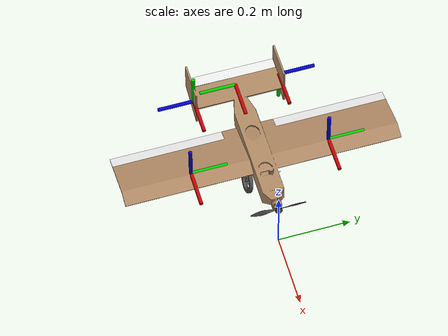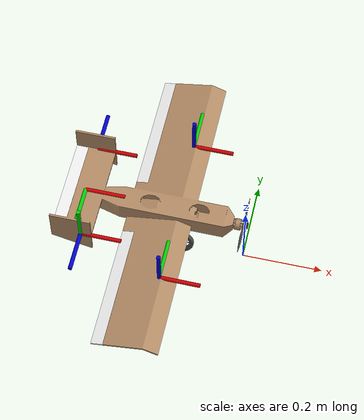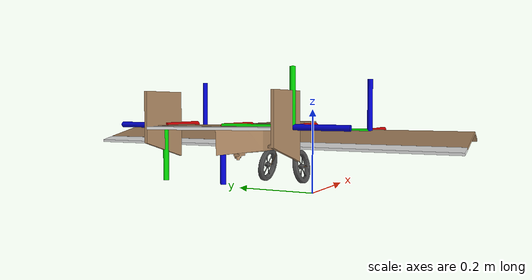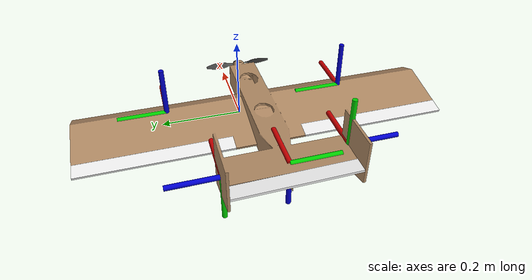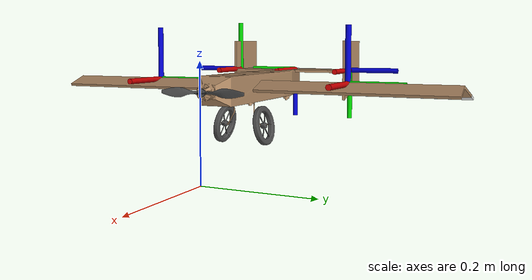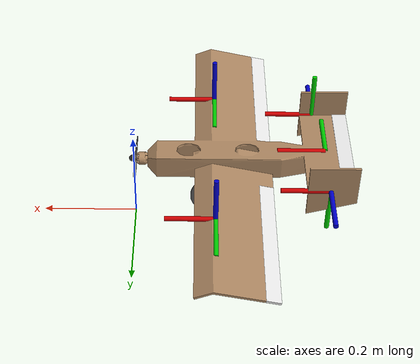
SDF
<?xml version='1.0'?>
<sdf version='1.6'>
  <model name="mini_fixedwing_03">
    <pose>0 0 0.15 0 0 0</pose>
    <link name='fuselage'>
      <inertial>
        <pose>-0.183 0 0 0 0 0</pose>
        <mass>0.245</mass>
        <inertia>
          <ixx>1.00e-3</ixx>
          <iyy>1.28e-3</iyy>
          <izz>1.20e-2</izz>
        </inertia>
      </inertial>
      <collision name='collision'>
        <geometry>
          <mesh>
            <uri>model://mini_fixedwing_03/meshes/stl/fuselage.stl</uri>
          </mesh>
        </geometry>
        <surface>
          <friction>
            <ode>
              <mu>0.2</mu>
              <mu2>0.2</mu2>
            </ode>
          </friction>
          <contact>
            <ode>
              <max_vel>0.1</max_vel>
              <min_depth>0.001</min_depth>
            </ode>
          </contact>
        </surface>
      </collision>
      <visual name='visual'>
        <geometry>
          <mesh>
            <uri>model://mini_fixedwing_03/meshes/stl/fuselage.stl</uri>
          </mesh>
        </geometry>
        <material>
          <ambient>0.678 0.529 0.384 1</ambient>
          <diffuse>0.678 0.529 0.384 1</diffuse>
          <specular>0.678 0.529 0.384 1</specular>
        </material>
      </visual>
      <visual name='cp_vtail_left'>
        <pose>-0.4 0.122 0.024 -1.57 0 0</pose>
        <geometry>
          <mesh>
            <scale>0.1 0.1 0.1</scale>
            <uri>model://mini_fixedwing_11/meshes/axes.dae</uri> </mesh>
        </geometry>
      </visual>
      <visual name='cp_vtail_right'>
        <pose>-0.38 -0.122 0.024 1.57 0 0</pose>
        <geometry>
          <mesh>
            <scale>0.1 0.1 0.1</scale>
            <uri>model://mini_fixedwing_11/meshes/axes.dae</uri>
          </mesh>
        </geometry>
      </visual>
      <visual name='cp_htail'>
        <pose>-0.4 0 0.024 3.14 0 0</pose>
        <geometry>
          <mesh>
            <scale>0.1 0.1 0.1</scale>
            <uri>model://mini_fixedwing_11/meshes/axes.dae</uri> </mesh>
        </geometry>
      </visual>
      <visual name='cp_wing_left'>
        <pose>-0.17 0.19 0.01 0 0 0</pose>
        <geometry>
          <mesh>
            <scale>0.1 0.1 0.1</scale>
            <uri>model://mini_fixedwing_11/meshes/axes.dae</uri> </mesh>
        </geometry>
      </visual>
      <visual name='cp_wing_right'>
        <pose>-0.17 -0.19 0.01 0 0 0</pose>
        <geometry>
          <mesh>
            <scale>0.1 0.1 0.1</scale>
            <uri>model://mini_fixedwing_11/meshes/axes.dae</uri> </mesh>
        </geometry>
      </visual>
    </link>

    <link name='wheel_left'>
      <inertial>
        <pose>-0.155 0.04 -0.068 0.17 0 0</pose>
        <mass>0.004</mass>
        <inertia>
          <ixx>1.49e-4</ixx>
          <iyy>6.63e-4</iyy>
          <izz>5.84e-4</izz>
        </inertia>
      </inertial>
      <visual name='visual'>
        <cast_shadows>0</cast_shadows>
        <geometry>
          <mesh>
            <uri>model://mini_fixedwing_03/meshes/stl/wheel_left.stl</uri>
          </mesh>
        </geometry>
        <material>
          <script>
            <name>Gazebo/DarkGrey</name>
          </script>
        </material>
      </visual>
      <collision name='collision'>
        <pose>-0.155 0.04 -0.068 1.74 0 0</pose>
        <geometry>
          <cylinder>
            <radius>0.035</radius>
            <length>0.01</length>
          </cylinder>
        </geometry>
        <surface>
          <friction>
            <ode>
              <mu>0.3</mu>
              <mu2>0.3</mu2>
            </ode>
          </friction>
          <contact>
            <ode>
              <max_vel>0.1</max_vel>
              <min_depth>0.001</min_depth>
            </ode>
          </contact>
        </surface>
      </collision>

    </link>

    <joint name='wheel_left_joint' type='revolute'>
      <pose>-0.155 0.04 -0.068 0.17 0 0</pose>
      <parent>fuselage</parent>
      <child>wheel_left</child>
      <axis>
        <xyz>0 1 0</xyz>
        <dynamics>
          <damping>0.1</damping>
        </dynamics>
      </axis>
      <physics>
        <ode>
          <implicit_spring_damper>1</implicit_spring_damper>
        </ode>
      </physics>
    </joint>

    <link name='wheel_right'>
      <inertial>
        <pose>-0.155 -0.04 -0.068 -0.17 0 0</pose>
        <mass>0.004</mass>
        <inertia>
          <ixx>1.49e-4</ixx>
          <iyy>6.63e-4</iyy>
          <izz>5.84e-4</izz>
        </inertia>
      </inertial>
      <visual name='visual'>
        <cast_shadows>0</cast_shadows>
        <geometry>
          <mesh>
            <uri>model://mini_fixedwing_03/meshes/stl/wheel_right.stl</uri>
          </mesh>
        </geometry>
        <material>
          <script>
            <name>Gazebo/DarkGrey</name>
          </script>
        </material>
      </visual>
      <collision name='collision'>
        <pose>-0.155 -0.04 -0.068 1.4 0 0</pose>
        <geometry>
          <cylinder>
            <radius>0.035</radius>
            <length>0.01</length>
          </cylinder>
        </geometry>
        <surface>
          <friction>
            <ode>
              <mu>0.3</mu>
              <mu2>0.3</mu2>
            </ode>
          </friction>
          <contact>
            <ode>
              <max_vel>0.1</max_vel>
              <min_depth>0.001</min_depth>
            </ode>
          </contact>
        </surface>
      </collision>
    </link>

    <joint name='wheel_right_joint' type='revolute'>
      <pose>-0.155 -0.04 -0.068 -0.17 0 0</pose>
      <parent>fuselage</parent>
      <child>wheel_right</child>
      <axis>
        <xyz>0 1 0</xyz>
        <dynamics>
          <damping>0.1</damping>
        </dynamics>
      </axis>
      <physics>
        <ode>
          <implicit_spring_damper>1</implicit_spring_damper>
        </ode>
      </physics>
    </joint>

    <!--The rear wheel doesn't stay in contact with the ground long.-->

    <link name='elevator'>
      <inertial>
        <pose>-0.44 0 0.023 0 0 0</pose>
        <mass>0.002</mass>
        <inertia>
          <ixx>8e-6</ixx>
          <iyy>2.94e-4</iyy>
          <izz>3e-4</izz>
        </inertia>
      </inertial>
      <visual name='visual'>
        <cast_shadows>0</cast_shadows>
        <geometry>
          <mesh>
            <uri>model://mini_fixedwing_03/meshes/stl/elevator.stl</uri>
          </mesh>
        </geometry>
        <material>
          <script>
            <name>Gazebo/White</name>
          </script>
        </material>
      </visual>
    </link>

    <joint name='elevator_joint' type='revolute'>
      <pose>-0.425 0 0.023 0 0 0</pose>
      <parent>fuselage</parent>
      <child>elevator</child>
      <axis>
        <xyz>0 1 0</xyz>
        <dynamics>
          <damping>0.1</damping>
        </dynamics>
        <limit>
          <lower>-0.5</lower>
          <upper>0.5</upper>
        </limit>
      </axis>
      <physics>
        <ode>
          <implicit_spring_damper>1</implicit_spring_damper>
        </ode>
      </physics>
    </joint>

    <link name='aileron_left'>
      <inertial>
        <pose>-0.276 0.2265 -0.012</pose>
        <mass>0.002</mass>
        <inertia>
          <ixx>1.16e-4</ixx>
          <iyy>1.48e-4</iyy>
          <izz>2.63e-4</izz>
        </inertia>
      </inertial>
      <visual name='visual'>
        <cast_shadows>0</cast_shadows>
        <geometry>
          <mesh>
            <uri>model://mini_fixedwing_03/meshes/stl/aileron_left.stl</uri>
          </mesh>
        </geometry>
        <material>
          <script>
            <name>Gazebo/White</name>
          </script>
        </material>
      </visual>
    </link>

    <joint name='aileron_left_joint' type='revolute'>
      <pose>-0.26 0.2265 -0.01</pose>
      <parent>fuselage</parent>
      <child>aileron_left</child>
      <axis>
        <xyz>0 -1 0</xyz>
        <dynamics>
          <damping>0.1</damping>
        </dynamics>
        <limit>
          <lower>-0.5</lower>
          <upper>0.5</upper>
        </limit>
      </axis>
      <physics>
        <ode>
          <implicit_spring_damper>1</implicit_spring_damper>
        </ode>
      </physics>
    </joint>

    <link name='aileron_right'>
      <inertial>
        <pose>-0.276 -0.2265 -0.012</pose>
        <mass>0.002</mass>
        <inertia>
          <ixx>1.16e-4</ixx>
          <iyy>1.48e-4</iyy>
          <izz>2.63e-4</izz>
        </inertia>
      </inertial>
      <visual name='visual'>
        <cast_shadows>0</cast_shadows>
        <geometry>
          <mesh>
            <uri>model://mini_fixedwing_03/meshes/stl/aileron_right.stl</uri>
          </mesh>
        </geometry>
        <material>
          <script>
            <name>Gazebo/White</name>
          </script>
        </material>
      </visual>
    </link>

    <joint name='aileron_right_joint' type='revolute'>
      <pose>-0.26 -0.2265 -0.01</pose>
      <parent>fuselage</parent>
      <child>aileron_right</child>
      <axis>
        <xyz>0 -1 0</xyz>
        <dynamics>
          <damping>0.1</damping>
        </dynamics>
        <limit>
          <lower>-0.5</lower>
          <upper>0.5</upper>
        </limit>
      </axis>
      <physics>
        <ode>
          <implicit_spring_damper>1</implicit_spring_damper>
        </ode>
      </physics>
    </joint>

    <link name='propeller'>
      <inertial>
        <mass>0.005</mass>
        <inertia>
          <ixx>1e-6</ixx>
          <iyy>1e-6</iyy>
          <izz>1e-6</izz>
        </inertia>
      </inertial>
      <visual name='visual'>
        <cast_shadows>0</cast_shadows>
        <geometry>
          <mesh>
            <uri>model://mini_fixedwing_03/meshes/stl/propeller.stl</uri>
          </mesh>
        </geometry>
        <material>
          <script>
            <name>Gazebo/DarkGrey</name>
          </script>
        </material>
      </visual>
    </link>

    <joint name='propeller_joint' type='revolute'>
      <parent>fuselage</parent>
      <child>propeller</child>
      <axis>
        <xyz>1 0 0</xyz>
      </axis>
    </joint>

    <include>
      <uri>model://gps</uri>
      <pose>0 0 0 0 0 0</pose>
      <name>gps</name>
    </include>
    <joint name='gps_joint' type='fixed'>
      <child>gps::link</child>
      <parent>fuselage</parent>
    </joint>

    <plugin name="vtail_left" filename="libLiftDragPlugin2.so">
      <pose>-0.4 0.122 0.024 -1.57 0 0</pose>
      <cL0>0</cL0>
      <cLa>4.75</cLa>
      <cm0>0</cm0>
      <cma>0</cma>
      <cD0>0.03</cD0>
      <kcDcL>0.1</kcDcL>
      <alpha_stall>0.34</alpha_stall>
      <cLa_stall>-3.85</cLa_stall>
      <cma_stall>0</cma_stall>
      <area>0.017</area>
      <air_density>1.2041</air_density>
      <link_name>fuselage</link_name>
    </plugin>

    <plugin name="vtail_right" filename="libLiftDragPlugin2.so">
      <pose>-0.4 -0.122 0.024 1.57 0 0</pose>
      <cL0>0</cL0>
      <cLa>4.75</cLa>
      <cm0>0</cm0>
      <cma>0</cma>
      <cD0>0.03</cD0>
      <kcDcL>0.1</kcDcL>
      <alpha_stall>0.34</alpha_stall>
      <cLa_stall>-3.85</cLa_stall>
      <cma_stall>0</cma_stall>
      <area>0.017</area>
      <air_density>1.2041</air_density>
      <link_name>fuselage</link_name>
    </plugin>

    <plugin name="htail" filename="libLiftDragPlugin2.so">
      <pose>-0.4 0 0.024 3.14 0 0</pose>
      <cL0>0</cL0>
      <cLa>4.75</cLa>
      <cm0>0</cm0>
      <cma>0</cma>
      <cD0>0.03</cD0>
      <kcDcL>0.017</kcDcL>
      <alpha_stall>0.34</alpha_stall>
      <cLa_stall>-3.85</cLa_stall>
      <cma_stall>0</cma_stall>
      <area>0.03</area>
      <air_density>1.2041</air_density>
      <link_name>fuselage</link_name>
      <control_joint_name>elevator_joint</control_joint_name>
      <control_joint_rad_to_cL>1.0</control_joint_rad_to_cL>
      <control_joint_rad_to_cm>-0.25</control_joint_rad_to_cm>
      <verbose>0</verbose>
    </plugin>

    <plugin name="wing_left" filename="libLiftDragPlugin2.so">
      <pose>-0.17 0.19 0.01 0 0 0</pose>
      <cL0>0.285</cL0>
      <cLa>4.75</cLa>
      <!--Check cm0, maybe need a larger htail-->
      <cm0>0.04</cm0>
      <cma>0</cma>
      <cD0>0.03</cD0>
      <kcDcL>0.1</kcDcL>
      <alpha_stall>0.34</alpha_stall>
      <cLa_stall>-3.85</cLa_stall>
      <cma_stall>0</cma_stall>
      <area>0.1</area>
      <air_density>1.2041</air_density>
      <link_name>fuselage</link_name>
      <control_joint_name>aileron_left_joint</control_joint_name>
      <control_joint_rad_to_cL>1.0</control_joint_rad_to_cL>
      <control_joint_rad_to_cm>-0.25</control_joint_rad_to_cm>
    </plugin>

    <plugin name="wing_right" filename="libLiftDragPlugin2.so">
      <pose>-0.17 -0.19 0.01 0 0 0</pose>
      <cL0>0.285</cL0>
      <cLa>4.75</cLa>
      <!--Check cm0, maybe need a larger htail-->
      <cm0>0.04</cm0>
      <cma>0</cma>
      <cD0>0.03</cD0>
      <kcDcL>0.1</kcDcL>
      <alpha_stall>0.34</alpha_stall>
      <cLa_stall>-3.85</cLa_stall>
      <cma_stall>0</cma_stall>
      <area>0.1</area>
      <air_density>1.2041</air_density>
      <link_name>fuselage</link_name>
      <control_joint_name>aileron_right_joint</control_joint_name>
      <control_joint_rad_to_cL>1.0</control_joint_rad_to_cL>
      <control_joint_rad_to_cm>-0.25</control_joint_rad_to_cm>
    </plugin>

    <!--Start PX4 autopilot-->

    <link name='imu_link'>
      <pose>-0.183 0 0 0 0 0</pose>
      <inertial>
        <mass>0.001</mass>
        <inertia>
          <ixx>1e-05</ixx>
          <iyy>1e-05</iyy>
          <izz>1e-05</izz>
        </inertia>
      </inertial>
    </link>

    <joint name='imu_joint' type='revolute'>
      <child>imu_link</child>
      <parent>fuselage</parent>
      <axis>
        <xyz>1 0 0</xyz>
        <limit>
          <lower>0</lower>
          <upper>0</upper>
          <effort>0</effort>
          <velocity>0</velocity>
        </limit>
        <dynamics>
          <spring_reference>0</spring_reference>
          <spring_stiffness>0</spring_stiffness>
        </dynamics>
        <use_parent_model_frame>1</use_parent_model_frame>
      </axis>
    </joint>

    <link name='airspeed_link'>
      <pose>0 0 0 0 0 0</pose>
      <inertial>
        <pose>0 0 0 0 0 0</pose>
        <mass>0.015</mass>
        <inertia>
          <ixx>1e-05</ixx>
          <ixy>0</ixy>
          <ixz>0</ixz>
          <iyy>1e-05</iyy>
          <iyz>0</iyz>
          <izz>1e-05</izz>
        </inertia>
      </inertial>
    </link>
    <joint name='airspeed_joint' type='revolute'>
      <child>airspeed_link</child>
      <parent>fuselage</parent>
      <axis>
        <xyz>1 0 0</xyz>
        <limit>
          <lower>0</lower>
          <upper>0</upper>
          <effort>0</effort>
          <velocity>0</velocity>
        </limit>
        <dynamics>
          <spring_reference>0</spring_reference>
          <spring_stiffness>0</spring_stiffness>
        </dynamics>
        <use_parent_model_frame>1</use_parent_model_frame>
      </axis>
    </joint>

    <plugin name='gazebo_imu_plugin' filename='libgazebo_imu_plugin.so'>
      <robotNamespace></robotNamespace>
      <linkName>imu_link</linkName>
      <imuTopic>/imu</imuTopic>
      <gyroscopeNoiseDensity>0.0003394</gyroscopeNoiseDensity>
      <gyroscopeRandomWalk>3.8785e-05</gyroscopeRandomWalk>
      <gyroscopeBiasCorrelationTime>1000.0</gyroscopeBiasCorrelationTime>
      <gyroscopeTurnOnBiasSigma>0.0087</gyroscopeTurnOnBiasSigma>
      <accelerometerNoiseDensity>0.004</accelerometerNoiseDensity>
      <accelerometerRandomWalk>0.006</accelerometerRandomWalk>
      <accelerometerBiasCorrelationTime>300.0</accelerometerBiasCorrelationTime>
      <accelerometerTurnOnBiasSigma>0.196</accelerometerTurnOnBiasSigma>
    </plugin>

    <plugin name='groundtruth_plugin' filename='libgazebo_groundtruth_plugin.so'>
      <robotNamespace/>
    </plugin>

    <plugin name='magnetometer_plugin' filename='libgazebo_magnetometer_plugin.so'>
      <robotNamespace/>
      <pubRate>100</pubRate>
      <noiseDensity>0.0004</noiseDensity>
      <randomWalk>6.4e-06</randomWalk>
      <biasCorrelationTime>600</biasCorrelationTime>
      <magTopic>/mag</magTopic>
    </plugin>

    <plugin name='barometer_plugin' filename='libgazebo_barometer_plugin.so'>
      <robotNamespace/>
      <pubRate>50</pubRate>
      <baroTopic>/baro</baroTopic>
    </plugin>

    <plugin name='airspeed_plugin' filename='libgazebo_airspeed_plugin.so'>
      <robotNamespace/>
      <linkName>airspeed_link</linkName>
    </plugin>

    <plugin name='motor_plugin' filename='libMotorPlugin.so'>
      <gztopic>/throttle1</gztopic>
      <joint_name>propeller_joint</joint_name>
      <prop_name>propeller</prop_name>
      <diameter>6</diameter>
      <ct>0.1162  0.0067  -0.108  -0.1988 0.1628</ct>
      <cp>0.0555  0.0309  0.0176  -0.2001 0.0801</cp>
      <kV>1900</kV>
      <i0>0.58</i0>
      <iMax>30</iMax>
      <r0>0.128</r0>
      <battV>7.4</battV>
      <capacity>1000</capacity>
      <axis_num>0</axis_num>
      <motor_eff>0.7</motor_eff>
      <verbose>1</verbose>
    </plugin>

    <plugin name='mavlink_interface' filename='libgazebo_mavlink_interface.so'>
      <robotNamespace></robotNamespace>
      <imuSubTopic>/imu</imuSubTopic>

      <magSubTopic>/mag</magSubTopic>
      <baroSubTopic>/baro</baroSubTopic>
      <mavlink_addr>INADDR_ANY</mavlink_addr>
      <mavlink_udp_port>14560</mavlink_udp_port>
      <serialEnabled>false</serialEnabled>
      <serialDevice>/dev/ttyACM0</serialDevice>
      <baudRate>921600</baudRate>
      <qgc_addr>INADDR_ANY</qgc_addr>
      <qgc_udp_port>14550</qgc_udp_port>
      <sdk_addr>INADDR_ANY</sdk_addr>
      <sdk_udp_port>14540</sdk_udp_port>
      <hil_mode>false</hil_mode>
      <hil_state_level>false</hil_state_level>
      <enable_lockstep>true</enable_lockstep>
      <use_tcp>true</use_tcp>
      <motorSpeedCommandPubTopic>/gazebo/command/motor_speed</motorSpeedCommandPubTopic>
      <control_channels>
        <channel name="puller">
          <input_index>4</input_index>
          <input_offset>0</input_offset>
          <input_scaling>1</input_scaling>
          <zero_position_disarmed>0</zero_position_disarmed>
          <zero_position_armed>0</zero_position_armed>
          <joint_control_type>position_gztopic</joint_control_type>
          <gztopic>/throttle1</gztopic>
          <joint_name>propeller_joint</joint_name>
        </channel>
        <channel name="aileron_right">
          <input_index>5</input_index>
          <input_offset>0</input_offset>
          <input_scaling>0.28</input_scaling>
          <zero_position_disarmed>0</zero_position_disarmed>
          <zero_position_armed>0</zero_position_armed>
          <joint_control_type>position</joint_control_type>
          <joint_name>aileron_right_joint</joint_name>
          <joint_control_pid>
            <p>10</p>
            <i>0</i>
            <d>0</d>
            <iMax>0</iMax>
            <iMin>0</iMin>
            <cmdMax>0.28</cmdMax>
            <cmdMin>-0.28</cmdMin>
          </joint_control_pid>
        </channel>
        <channel name="aileron_left">
          <input_index>6</input_index>
          <input_offset>0</input_offset>
          <input_scaling>0.28</input_scaling>
          <zero_position_disarmed>0</zero_position_disarmed>
          <zero_position_armed>0</zero_position_armed>
          <joint_control_type>position</joint_control_type>
          <joint_name>aileron_left_joint</joint_name>
          <joint_control_pid>
            <p>10</p>
            <i>0</i>
            <d>0</d>
            <iMax>0</iMax>
            <iMin>0</iMin>
            <cmdMax>0.28</cmdMax>
            <cmdMin>-0.28</cmdMin>
          </joint_control_pid>
        </channel>
        <channel name="elevator">
          <input_index>7</input_index>
          <input_offset>0</input_offset>
          <input_scaling>0.28</input_scaling>
          <zero_position_disarmed>0</zero_position_disarmed>
          <zero_position_armed>0</zero_position_armed>
          <joint_control_type>position</joint_control_type>
          <joint_name>elevator_joint</joint_name>
          <joint_control_pid>
            <p>10</p>
            <i>0</i>
            <d>0</d>
            <iMax>0</iMax>
            <iMin>0</iMin>
            <cmdMax>0.28</cmdMax>
            <cmdMin>-0.28</cmdMin>
          </joint_control_pid>
        </channel>
      </control_channels>

    </plugin>
  </model>

</sdf>

<!-- vim: set et fenc=utf-8 ft=xml ff=unix sts=0 sw=2 ts=2 : -->

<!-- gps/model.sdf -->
<sdf version="1.6">
  <model name="gps">
    <link name="link">
      <pose>0 0 0 0 0 0</pose>
      <inertial>
        <pose>0 0 0 0 0 0</pose>
        <mass>0.015</mass>
        <inertia>
          <ixx>1e-05</ixx>
          <ixy>0</ixy>
          <ixz>0</ixz>
          <iyy>1e-05</iyy>
          <iyz>0</iyz>
          <izz>1e-05</izz>
        </inertia>
      </inertial>
      <visual name="visual">
        <geometry>
          <cylinder>
            <radius>0.01</radius>
            <length>0.002</length>
          </cylinder>
        </geometry>
        <material>
          <script>
            <name>Gazebo/Black</name>
            <uri>file://usr/share/gz/gz-sim8/media/gazebo.material</uri>
          </script>
        </material>
      </visual>
      <sensor name="gps" type="gps">
        <pose>0 0 0 0 0 0</pose>
        <update_rate>5.0</update_rate>
        <always_on>true</always_on>
        <visualize>false</visualize>
        <!-- GpsSensor noise currently not used -->
        <plugin name="gps_plugin" filename="libgazebo_gps_plugin.so">
          <robotNamespace></robotNamespace>
          <gpsNoise>true</gpsNoise>
          <gpsXYRandomWalk>2.0</gpsXYRandomWalk>
          <gpsZRandomWalk>4.0</gpsZRandomWalk>
          <gpsXYNoiseDensity>2.0e-4</gpsXYNoiseDensity>
          <gpsZNoiseDensity>4.0e-4</gpsZNoiseDensity>
          <gpsVXYNoiseDensity>0.2</gpsVXYNoiseDensity>
          <gpsVZNoiseDensity>0.4</gpsVZNoiseDensity>
        </plugin>
      </sensor>
    </link>
  </model>
</sdf>
